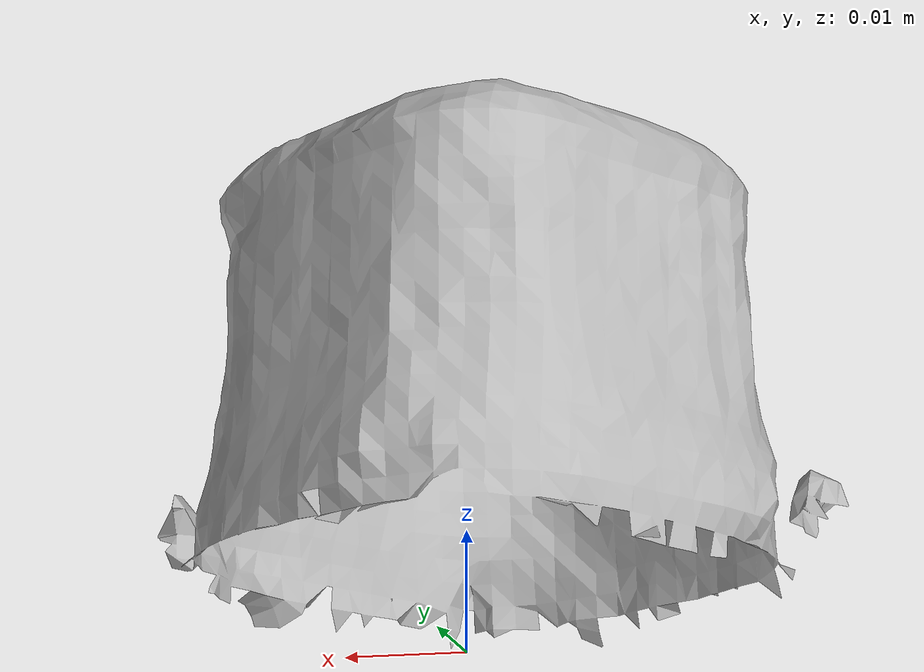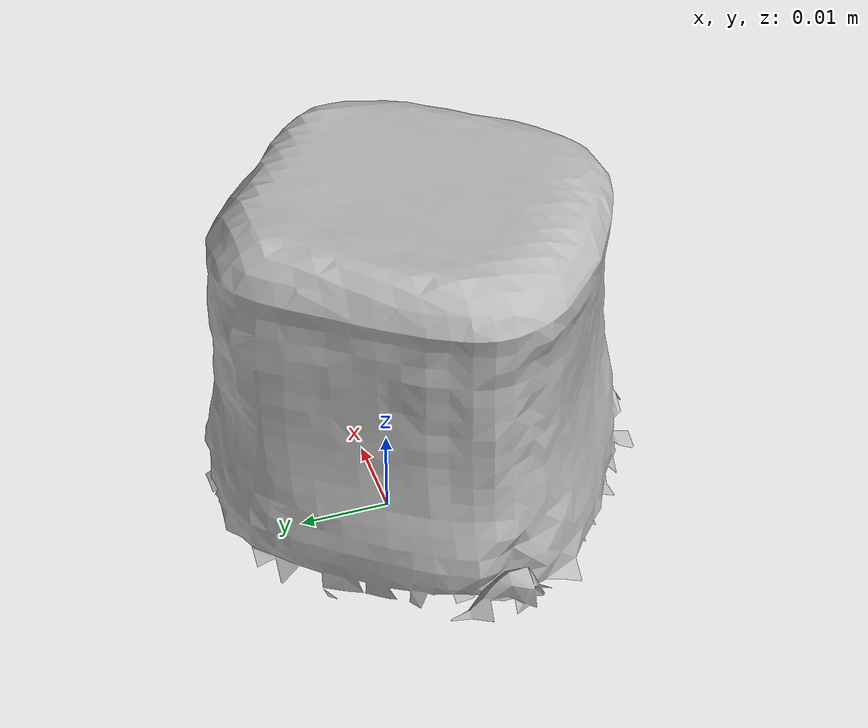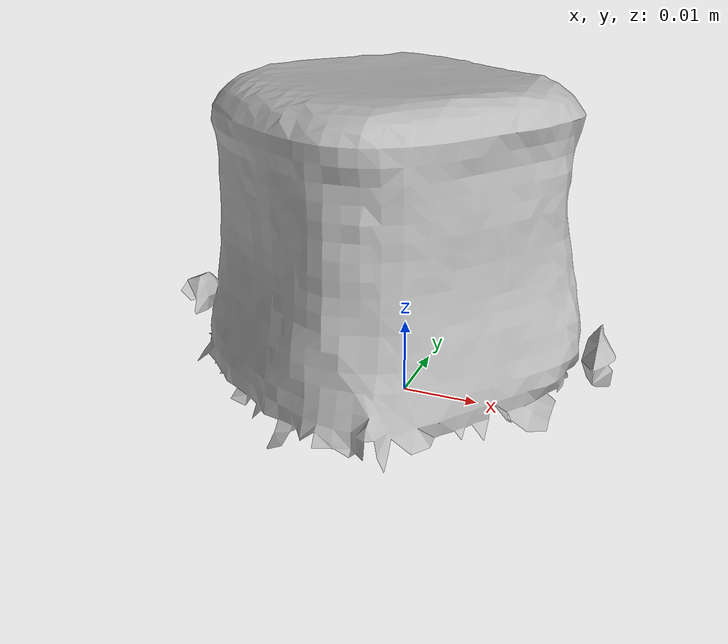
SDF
<?xml version='1.0'?>
<sdf version="1.4">
  <model name="i_lego_duplo">
    <static>false</static>
    <link name="link">
      <inertial>
        <pose>-0.0007234334344806385 -0.00308340114233082 0.025301049321047653 0.8687213328526036 -1.4762322508468178 -1.1937614547106805</pose>
        <mass>4.6561112974718803e-05</mass>
        <inertia>
          <ixx>1.00125552265245e-08</ixx>
          <ixy>-3.6372882731392334e-25</ixy>
          <ixz>-3.5295947928492667e-25</ixz>
          <iyy>7.658100156448124e-09</iyy>
          <iyz>-3.1058135308844186e-25</iyz>
          <izz>7.520637840479156e-09</izz>
        </inertia>
      </inertial>
      <collision name="collision">
        <geometry>
          <mesh>
            <!-- Use a downsampled mesh for collisions -->
            <uri>model://073-i_lego_duplo/downsampled.obj</uri>
	        </mesh>
        </geometry>
        <surface>
      </surface>
      </collision>
      <visual name="visual">
        <geometry>
          <mesh>
            <uri>model://073-i_lego_duplo/tsdf/textured.obj</uri>
	        </mesh>
        </geometry>
        <material>
          <script>
            <uri>model://073-i_lego_duplo/i_lego_duplo.material</uri>
            <name>i_lego_duplo</name>
          </script>
        </material>
      </visual>
    </link>
  </model>
</sdf>
